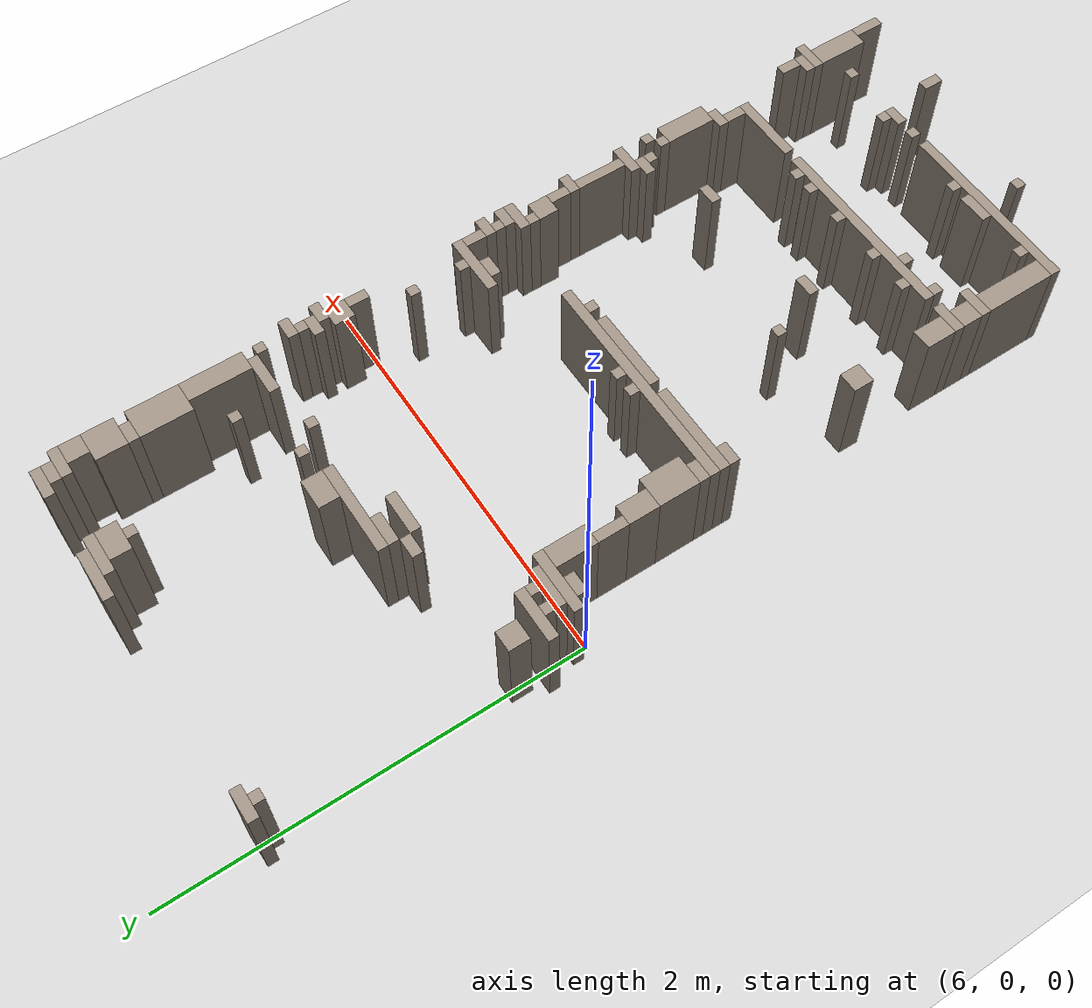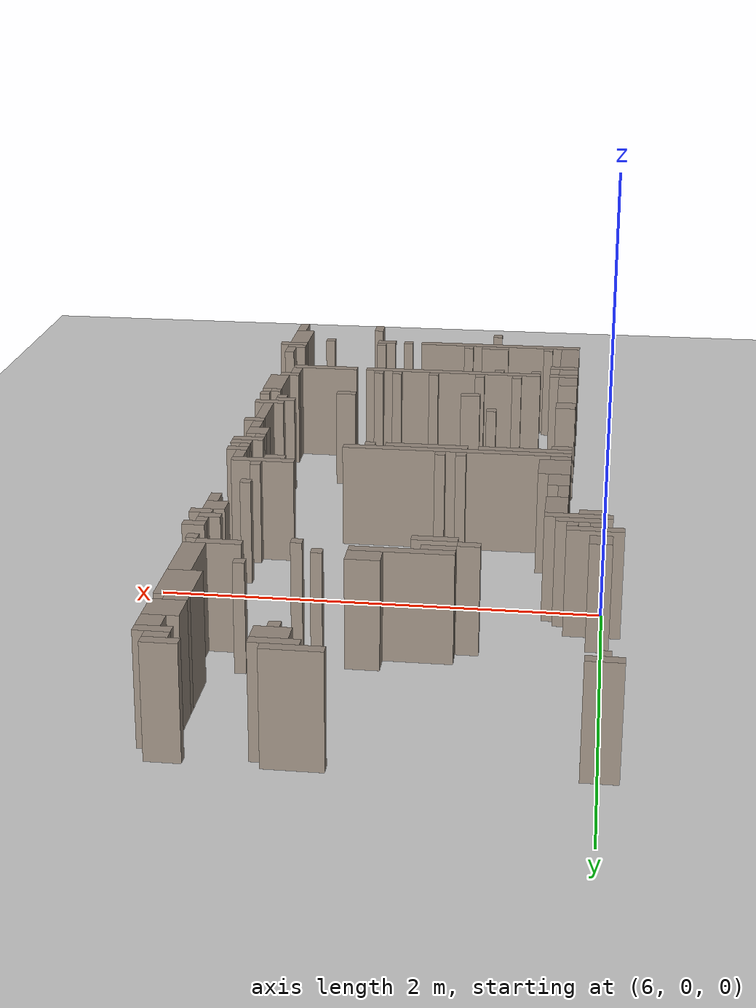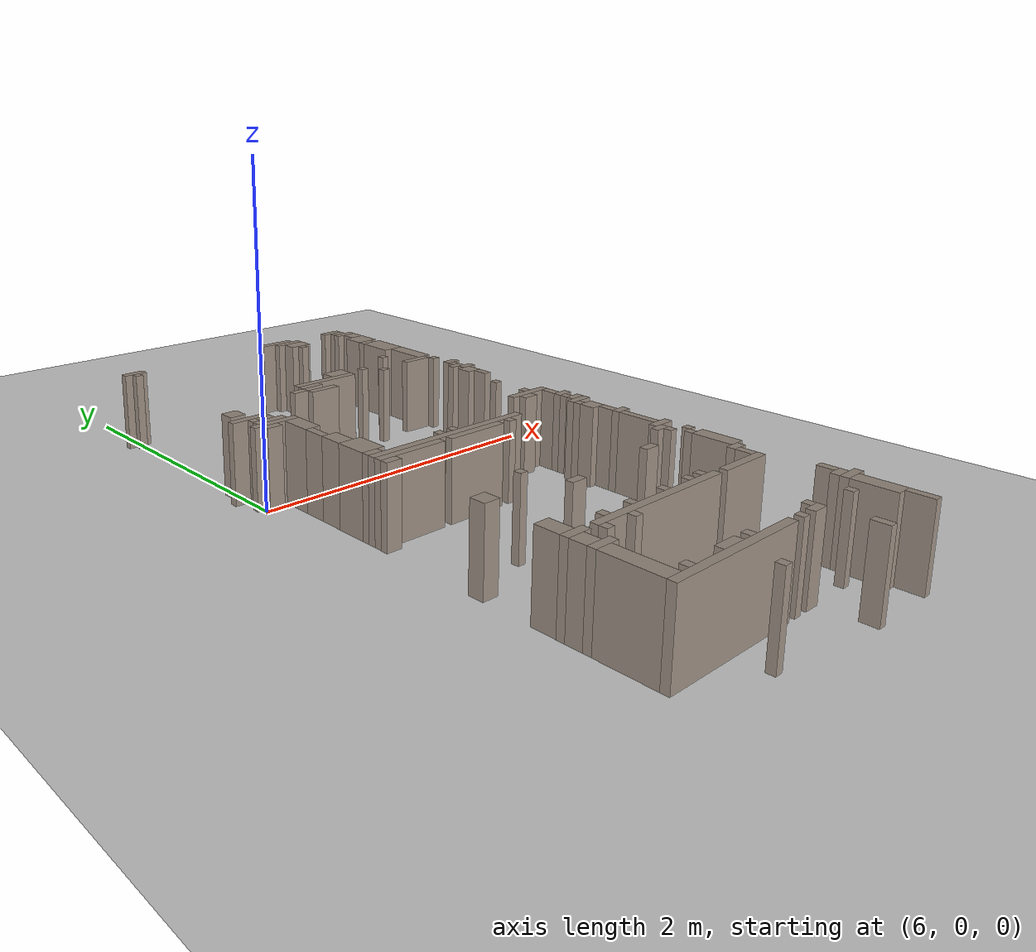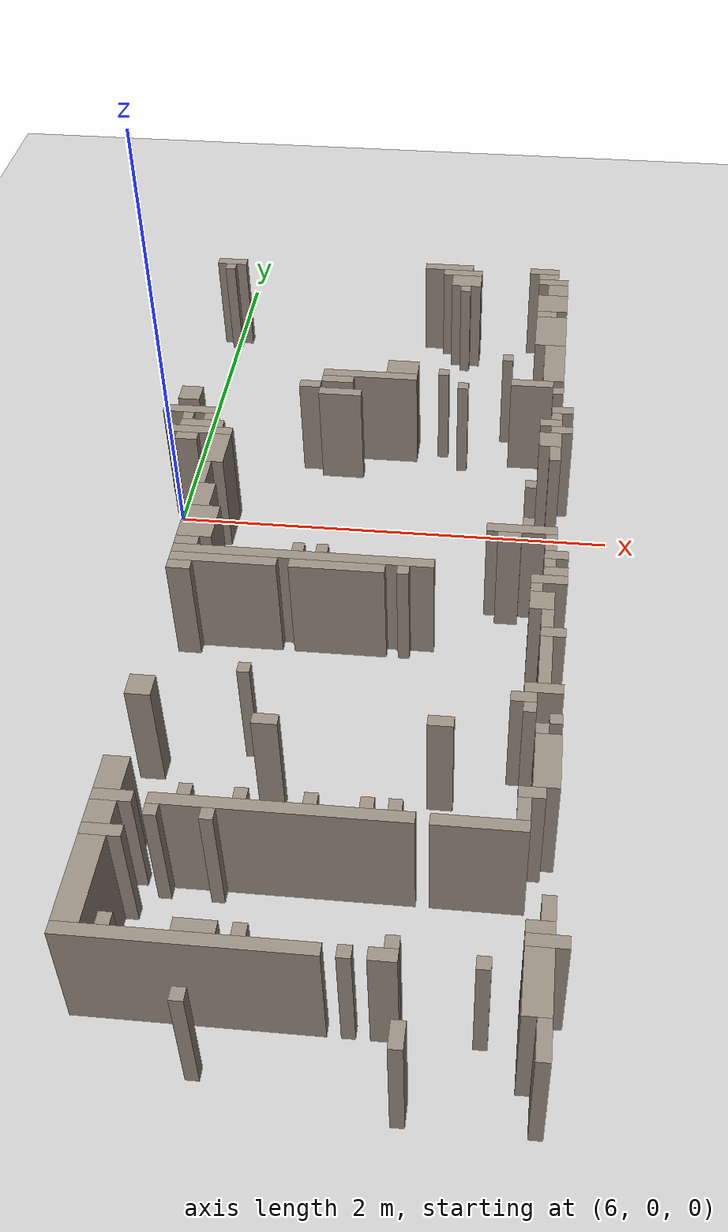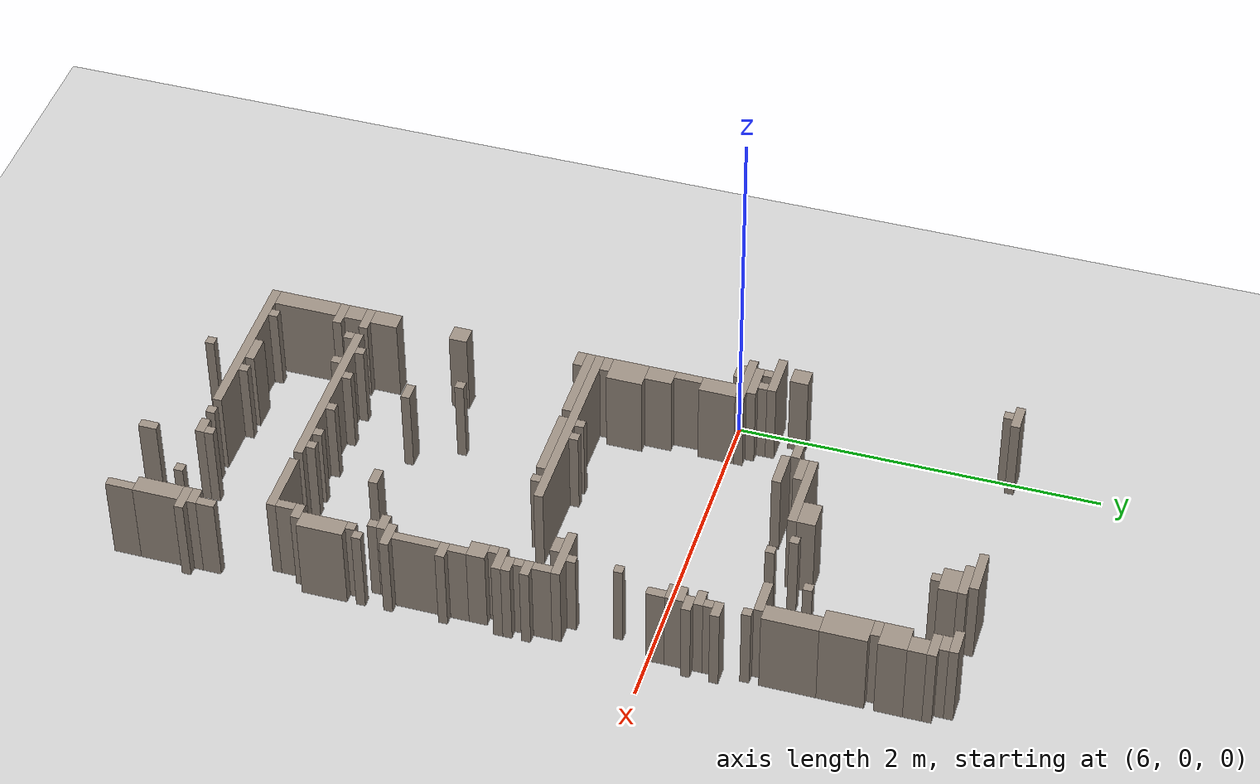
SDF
<sdf version="1.8">
 <world name="bolsao_real">
  <model name="ground_plane">
   <static>true</static>
   <link name="link">
    <collision name="col">
     <geometry><plane><normal>0 0 1</normal><size>100 100</size></plane></geometry>
    </collision>
    <visual name="vis">
     <geometry><plane><normal>0 0 1</normal><size>100 100</size></plane></geometry>
     <material><ambient>0.8 0.8 0.8 1</ambient><diffuse>0.8 0.8 0.8 1</diffuse></material>
    </visual>
   </link>
  </model>
  <model name="wall_0">
   <static>true</static>
   <pose>7.690 1.462 0.250 0 0 0</pose>
   <link name="link">
    <collision name="col"><geometry><box><size>0.150 0.050 0.500</size></box></geometry></collision>
    <visual name="vis">
     <geometry><box><size>0.150 0.050 0.500</size></box></geometry>
     <material><ambient>0.6 0.55 0.5 1</ambient><diffuse>0.6 0.55 0.5 1</diffuse></material>
    </visual>
   </link>
  </model>
  <model name="wall_1">
   <static>true</static>
   <pose>7.665 1.512 0.250 0 0 0</pose>
   <link name="link">
    <collision name="col"><geometry><box><size>0.100 0.050 0.500</size></box></geometry></collision>
    <visual name="vis">
     <geometry><box><size>0.100 0.050 0.500</size></box></geometry>
     <material><ambient>0.6 0.55 0.5 1</ambient><diffuse>0.6 0.55 0.5 1</diffuse></material>
    </visual>
   </link>
  </model>
  <model name="wall_2">
   <static>true</static>
   <pose>7.690 1.262 0.250 0 0 0</pose>
   <link name="link">
    <collision name="col"><geometry><box><size>0.150 0.150 0.500</size></box></geometry></collision>
    <visual name="vis">
     <geometry><box><size>0.150 0.150 0.500</size></box></geometry>
     <material><ambient>0.6 0.55 0.5 1</ambient><diffuse>0.6 0.55 0.5 1</diffuse></material>
    </visual>
   </link>
  </model>
  <model name="wall_3">
   <static>true</static>
   <pose>7.715 1.387 0.250 0 0 0</pose>
   <link name="link">
    <collision name="col"><geometry><box><size>0.100 0.100 0.500</size></box></geometry></collision>
    <visual name="vis">
     <geometry><box><size>0.100 0.100 0.500</size></box></geometry>
     <material><ambient>0.6 0.55 0.5 1</ambient><diffuse>0.6 0.55 0.5 1</diffuse></material>
    </visual>
   </link>
  </model>
  <model name="wall_4">
   <static>true</static>
   <pose>5.990 1.462 0.250 0 0 0</pose>
   <link name="link">
    <collision name="col"><geometry><box><size>0.050 0.050 0.500</size></box></geometry></collision>
    <visual name="vis">
     <geometry><box><size>0.050 0.050 0.500</size></box></geometry>
     <material><ambient>0.6 0.55 0.5 1</ambient><diffuse>0.6 0.55 0.5 1</diffuse></material>
    </visual>
   </link>
  </model>
  <model name="wall_5">
   <static>true</static>
   <pose>7.740 0.512 0.250 0 0 0</pose>
   <link name="link">
    <collision name="col"><geometry><box><size>0.050 0.050 0.500</size></box></geometry></collision>
    <visual name="vis">
     <geometry><box><size>0.050 0.050 0.500</size></box></geometry>
     <material><ambient>0.6 0.55 0.5 1</ambient><diffuse>0.6 0.55 0.5 1</diffuse></material>
    </visual>
   </link>
  </model>
  <model name="wall_6">
   <static>true</static>
   <pose>5.990 1.512 0.250 0 0 0</pose>
   <link name="link">
    <collision name="col"><geometry><box><size>0.150 0.050 0.500</size></box></geometry></collision>
    <visual name="vis">
     <geometry><box><size>0.150 0.050 0.500</size></box></geometry>
     <material><ambient>0.6 0.55 0.5 1</ambient><diffuse>0.6 0.55 0.5 1</diffuse></material>
    </visual>
   </link>
  </model>
  <model name="wall_7">
   <static>true</static>
   <pose>7.715 0.737 0.250 0 0 0</pose>
   <link name="link">
    <collision name="col"><geometry><box><size>0.100 0.300 0.500</size></box></geometry></collision>
    <visual name="vis">
     <geometry><box><size>0.100 0.300 0.500</size></box></geometry>
     <material><ambient>0.6 0.55 0.5 1</ambient><diffuse>0.6 0.55 0.5 1</diffuse></material>
    </visual>
   </link>
  </model>
  <model name="wall_8">
   <static>true</static>
   <pose>7.765 0.362 0.250 0 0 0</pose>
   <link name="link">
    <collision name="col"><geometry><box><size>0.100 0.050 0.500</size></box></geometry></collision>
    <visual name="vis">
     <geometry><box><size>0.100 0.050 0.500</size></box></geometry>
     <material><ambient>0.6 0.55 0.5 1</ambient><diffuse>0.6 0.55 0.5 1</diffuse></material>
    </visual>
   </link>
  </model>
  <model name="wall_9">
   <static>true</static>
   <pose>7.715 0.262 0.250 0 0 0</pose>
   <link name="link">
    <collision name="col"><geometry><box><size>0.100 0.050 0.500</size></box></geometry></collision>
    <visual name="vis">
     <geometry><box><size>0.100 0.050 0.500</size></box></geometry>
     <material><ambient>0.6 0.55 0.5 1</ambient><diffuse>0.6 0.55 0.5 1</diffuse></material>
    </visual>
   </link>
  </model>
  <model name="wall_10">
   <static>true</static>
   <pose>7.740 0.312 0.250 0 0 0</pose>
   <link name="link">
    <collision name="col"><geometry><box><size>0.050 0.050 0.500</size></box></geometry></collision>
    <visual name="vis">
     <geometry><box><size>0.050 0.050 0.500</size></box></geometry>
     <material><ambient>0.6 0.55 0.5 1</ambient><diffuse>0.6 0.55 0.5 1</diffuse></material>
    </visual>
   </link>
  </model>
  <model name="wall_11">
   <static>true</static>
   <pose>6.215 -0.063 0.250 0 0 0</pose>
   <link name="link">
    <collision name="col"><geometry><box><size>0.100 0.200 0.500</size></box></geometry></collision>
    <visual name="vis">
     <geometry><box><size>0.100 0.200 0.500</size></box></geometry>
     <material><ambient>0.6 0.55 0.5 1</ambient><diffuse>0.6 0.55 0.5 1</diffuse></material>
    </visual>
   </link>
  </model>
  <model name="wall_12">
   <static>true</static>
   <pose>7.640 -0.188 0.250 0 0 0</pose>
   <link name="link">
    <collision name="col"><geometry><box><size>0.050 0.050 0.500</size></box></geometry></collision>
    <visual name="vis">
     <geometry><box><size>0.050 0.050 0.500</size></box></geometry>
     <material><ambient>0.6 0.55 0.5 1</ambient><diffuse>0.6 0.55 0.5 1</diffuse></material>
    </visual>
   </link>
  </model>
  <model name="wall_14">
   <static>true</static>
   <pose>7.740 0.037 0.250 0 0 0</pose>
   <link name="link">
    <collision name="col"><geometry><box><size>0.050 0.100 0.500</size></box></geometry></collision>
    <visual name="vis">
     <geometry><box><size>0.050 0.100 0.500</size></box></geometry>
     <material><ambient>0.6 0.55 0.5 1</ambient><diffuse>0.6 0.55 0.5 1</diffuse></material>
    </visual>
   </link>
  </model>
  <model name="wall_16">
   <static>true</static>
   <pose>7.765 0.212 0.250 0 0 0</pose>
   <link name="link">
    <collision name="col"><geometry><box><size>0.100 0.050 0.500</size></box></geometry></collision>
    <visual name="vis">
     <geometry><box><size>0.100 0.050 0.500</size></box></geometry>
     <material><ambient>0.6 0.55 0.5 1</ambient><diffuse>0.6 0.55 0.5 1</diffuse></material>
    </visual>
   </link>
  </model>
  <model name="wall_18">
   <static>true</static>
   <pose>6.215 -0.388 0.250 0 0 0</pose>
   <link name="link">
    <collision name="col"><geometry><box><size>0.100 0.150 0.500</size></box></geometry></collision>
    <visual name="vis">
     <geometry><box><size>0.100 0.150 0.500</size></box></geometry>
     <material><ambient>0.6 0.55 0.5 1</ambient><diffuse>0.6 0.55 0.5 1</diffuse></material>
    </visual>
   </link>
  </model>
  <model name="wall_19">
   <static>true</static>
   <pose>7.740 -0.563 0.250 0 0 0</pose>
   <link name="link">
    <collision name="col"><geometry><box><size>0.050 0.100 0.500</size></box></geometry></collision>
    <visual name="vis">
     <geometry><box><size>0.050 0.100 0.500</size></box></geometry>
     <material><ambient>0.6 0.55 0.5 1</ambient><diffuse>0.6 0.55 0.5 1</diffuse></material>
    </visual>
   </link>
  </model>
  <model name="wall_20">
   <static>true</static>
   <pose>7.765 -0.638 0.250 0 0 0</pose>
   <link name="link">
    <collision name="col"><geometry><box><size>0.100 0.050 0.500</size></box></geometry></collision>
    <visual name="vis">
     <geometry><box><size>0.100 0.050 0.500</size></box></geometry>
     <material><ambient>0.6 0.55 0.5 1</ambient><diffuse>0.6 0.55 0.5 1</diffuse></material>
    </visual>
   </link>
  </model>
  <model name="wall_22">
   <static>true</static>
   <pose>6.215 -0.688 0.250 0 0 0</pose>
   <link name="link">
    <collision name="col"><geometry><box><size>0.100 0.050 0.500</size></box></geometry></collision>
    <visual name="vis">
     <geometry><box><size>0.100 0.050 0.500</size></box></geometry>
     <material><ambient>0.6 0.55 0.5 1</ambient><diffuse>0.6 0.55 0.5 1</diffuse></material>
    </visual>
   </link>
  </model>
  <model name="wall_24">
   <static>true</static>
   <pose>7.715 0.137 0.250 0 0 0</pose>
   <link name="link">
    <collision name="col"><geometry><box><size>0.100 0.100 0.500</size></box></geometry></collision>
    <visual name="vis">
     <geometry><box><size>0.100 0.100 0.500</size></box></geometry>
     <material><ambient>0.6 0.55 0.5 1</ambient><diffuse>0.6 0.55 0.5 1</diffuse></material>
    </visual>
   </link>
  </model>
  <model name="wall_27">
   <static>true</static>
   <pose>7.740 -0.688 0.250 0 0 0</pose>
   <link name="link">
    <collision name="col"><geometry><box><size>0.050 0.050 0.500</size></box></geometry></collision>
    <visual name="vis">
     <geometry><box><size>0.050 0.050 0.500</size></box></geometry>
     <material><ambient>0.6 0.55 0.5 1</ambient><diffuse>0.6 0.55 0.5 1</diffuse></material>
    </visual>
   </link>
  </model>
  <model name="wall_29">
   <static>true</static>
   <pose>7.765 -0.738 0.250 0 0 0</pose>
   <link name="link">
    <collision name="col"><geometry><box><size>0.100 0.050 0.500</size></box></geometry></collision>
    <visual name="vis">
     <geometry><box><size>0.100 0.050 0.500</size></box></geometry>
     <material><ambient>0.6 0.55 0.5 1</ambient><diffuse>0.6 0.55 0.5 1</diffuse></material>
    </visual>
   </link>
  </model>
  <model name="wall_31">
   <static>true</static>
   <pose>7.740 -1.013 0.250 0 0 0</pose>
   <link name="link">
    <collision name="col"><geometry><box><size>0.050 0.100 0.500</size></box></geometry></collision>
    <visual name="vis">
     <geometry><box><size>0.050 0.100 0.500</size></box></geometry>
     <material><ambient>0.6 0.55 0.5 1</ambient><diffuse>0.6 0.55 0.5 1</diffuse></material>
    </visual>
   </link>
  </model>
  <model name="wall_32">
   <static>true</static>
   <pose>7.740 -0.788 0.250 0 0 0</pose>
   <link name="link">
    <collision name="col"><geometry><box><size>0.150 0.050 0.500</size></box></geometry></collision>
    <visual name="vis">
     <geometry><box><size>0.150 0.050 0.500</size></box></geometry>
     <material><ambient>0.6 0.55 0.5 1</ambient><diffuse>0.6 0.55 0.5 1</diffuse></material>
    </visual>
   </link>
  </model>
  <model name="wall_35">
   <static>true</static>
   <pose>7.665 1.162 0.250 0 0 0</pose>
   <link name="link">
    <collision name="col"><geometry><box><size>0.100 0.050 0.500</size></box></geometry></collision>
    <visual name="vis">
     <geometry><box><size>0.100 0.050 0.500</size></box></geometry>
     <material><ambient>0.6 0.55 0.5 1</ambient><diffuse>0.6 0.55 0.5 1</diffuse></material>
    </visual>
   </link>
  </model>
  <model name="wall_39">
   <static>true</static>
   <pose>6.215 -0.838 0.250 0 0 0</pose>
   <link name="link">
    <collision name="col"><geometry><box><size>0.100 0.050 0.500</size></box></geometry></collision>
    <visual name="vis">
     <geometry><box><size>0.100 0.050 0.500</size></box></geometry>
     <material><ambient>0.6 0.55 0.5 1</ambient><diffuse>0.6 0.55 0.5 1</diffuse></material>
    </visual>
   </link>
  </model>
  <model name="wall_40">
   <static>true</static>
   <pose>7.690 -0.838 0.250 0 0 0</pose>
   <link name="link">
    <collision name="col"><geometry><box><size>0.050 0.050 0.500</size></box></geometry></collision>
    <visual name="vis">
     <geometry><box><size>0.050 0.050 0.500</size></box></geometry>
     <material><ambient>0.6 0.55 0.5 1</ambient><diffuse>0.6 0.55 0.5 1</diffuse></material>
    </visual>
   </link>
  </model>
  <model name="wall_42">
   <static>true</static>
   <pose>7.740 -1.238 0.250 0 0 0</pose>
   <link name="link">
    <collision name="col"><geometry><box><size>0.050 0.250 0.500</size></box></geometry></collision>
    <visual name="vis">
     <geometry><box><size>0.050 0.250 0.500</size></box></geometry>
     <material><ambient>0.6 0.55 0.5 1</ambient><diffuse>0.6 0.55 0.5 1</diffuse></material>
    </visual>
   </link>
  </model>
  <model name="wall_44">
   <static>true</static>
   <pose>7.765 -1.088 0.250 0 0 0</pose>
   <link name="link">
    <collision name="col"><geometry><box><size>0.100 0.050 0.500</size></box></geometry></collision>
    <visual name="vis">
     <geometry><box><size>0.100 0.050 0.500</size></box></geometry>
     <material><ambient>0.6 0.55 0.5 1</ambient><diffuse>0.6 0.55 0.5 1</diffuse></material>
    </visual>
   </link>
  </model>
  <model name="wall_53">
   <static>true</static>
   <pose>6.215 -1.513 0.250 0 0 0</pose>
   <link name="link">
    <collision name="col"><geometry><box><size>0.100 0.100 0.500</size></box></geometry></collision>
    <visual name="vis">
     <geometry><box><size>0.100 0.100 0.500</size></box></geometry>
     <material><ambient>0.6 0.55 0.5 1</ambient><diffuse>0.6 0.55 0.5 1</diffuse></material>
    </visual>
   </link>
  </model>
  <model name="wall_54">
   <static>true</static>
   <pose>7.715 -0.913 0.250 0 0 0</pose>
   <link name="link">
    <collision name="col"><geometry><box><size>0.100 0.100 0.500</size></box></geometry></collision>
    <visual name="vis">
     <geometry><box><size>0.100 0.100 0.500</size></box></geometry>
     <material><ambient>0.6 0.55 0.5 1</ambient><diffuse>0.6 0.55 0.5 1</diffuse></material>
    </visual>
   </link>
  </model>
  <model name="wall_56">
   <static>true</static>
   <pose>7.690 -1.488 0.250 0 0 0</pose>
   <link name="link">
    <collision name="col"><geometry><box><size>0.050 0.050 0.500</size></box></geometry></collision>
    <visual name="vis">
     <geometry><box><size>0.050 0.050 0.500</size></box></geometry>
     <material><ambient>0.6 0.55 0.5 1</ambient><diffuse>0.6 0.55 0.5 1</diffuse></material>
    </visual>
   </link>
  </model>
  <model name="wall_59">
   <static>true</static>
   <pose>6.690 -0.688 0.250 0 0 0</pose>
   <link name="link">
    <collision name="col"><geometry><box><size>0.050 0.050 0.500</size></box></geometry></collision>
    <visual name="vis">
     <geometry><box><size>0.050 0.050 0.500</size></box></geometry>
     <material><ambient>0.6 0.55 0.5 1</ambient><diffuse>0.6 0.55 0.5 1</diffuse></material>
    </visual>
   </link>
  </model>
  <model name="wall_60">
   <static>true</static>
   <pose>7.140 -0.788 0.250 0 0 0</pose>
   <link name="link">
    <collision name="col"><geometry><box><size>0.050 0.050 0.500</size></box></geometry></collision>
    <visual name="vis">
     <geometry><box><size>0.050 0.050 0.500</size></box></geometry>
     <material><ambient>0.6 0.55 0.5 1</ambient><diffuse>0.6 0.55 0.5 1</diffuse></material>
    </visual>
   </link>
  </model>
  <model name="wall_61">
   <static>true</static>
   <pose>7.240 1.362 0.250 0 0 0</pose>
   <link name="link">
    <collision name="col"><geometry><box><size>0.050 0.050 0.500</size></box></geometry></collision>
    <visual name="vis">
     <geometry><box><size>0.050 0.050 0.500</size></box></geometry>
     <material><ambient>0.6 0.55 0.5 1</ambient><diffuse>0.6 0.55 0.5 1</diffuse></material>
    </visual>
   </link>
  </model>
  <model name="wall_62">
   <static>true</static>
   <pose>6.240 -0.563 0.250 0 0 0</pose>
   <link name="link">
    <collision name="col"><geometry><box><size>0.150 0.200 0.500</size></box></geometry></collision>
    <visual name="vis">
     <geometry><box><size>0.150 0.200 0.500</size></box></geometry>
     <material><ambient>0.6 0.55 0.5 1</ambient><diffuse>0.6 0.55 0.5 1</diffuse></material>
    </visual>
   </link>
  </model>
  <model name="wall_63">
   <static>true</static>
   <pose>6.215 -1.938 0.250 0 0 0</pose>
   <link name="link">
    <collision name="col"><geometry><box><size>0.100 0.150 0.500</size></box></geometry></collision>
    <visual name="vis">
     <geometry><box><size>0.100 0.150 0.500</size></box></geometry>
     <material><ambient>0.6 0.55 0.5 1</ambient><diffuse>0.6 0.55 0.5 1</diffuse></material>
    </visual>
   </link>
  </model>
  <model name="wall_64">
   <static>true</static>
   <pose>6.590 -1.388 0.250 0 0 0</pose>
   <link name="link">
    <collision name="col"><geometry><box><size>0.050 0.050 0.500</size></box></geometry></collision>
    <visual name="vis">
     <geometry><box><size>0.050 0.050 0.500</size></box></geometry>
     <material><ambient>0.6 0.55 0.5 1</ambient><diffuse>0.6 0.55 0.5 1</diffuse></material>
    </visual>
   </link>
  </model>
  <model name="wall_66">
   <static>true</static>
   <pose>6.240 -2.038 0.250 0 0 0</pose>
   <link name="link">
    <collision name="col"><geometry><box><size>0.150 0.050 0.500</size></box></geometry></collision>
    <visual name="vis">
     <geometry><box><size>0.150 0.050 0.500</size></box></geometry>
     <material><ambient>0.6 0.55 0.5 1</ambient><diffuse>0.6 0.55 0.5 1</diffuse></material>
    </visual>
   </link>
  </model>
  <model name="wall_67">
   <static>true</static>
   <pose>6.215 -2.113 0.250 0 0 0</pose>
   <link name="link">
    <collision name="col"><geometry><box><size>0.100 0.100 0.500</size></box></geometry></collision>
    <visual name="vis">
     <geometry><box><size>0.100 0.100 0.500</size></box></geometry>
     <material><ambient>0.6 0.55 0.5 1</ambient><diffuse>0.6 0.55 0.5 1</diffuse></material>
    </visual>
   </link>
  </model>
  <model name="wall_68">
   <static>true</static>
   <pose>7.790 -1.538 0.250 0 0 0</pose>
   <link name="link">
    <collision name="col"><geometry><box><size>0.050 0.050 0.500</size></box></geometry></collision>
    <visual name="vis">
     <geometry><box><size>0.050 0.050 0.500</size></box></geometry>
     <material><ambient>0.6 0.55 0.5 1</ambient><diffuse>0.6 0.55 0.5 1</diffuse></material>
    </visual>
   </link>
  </model>
  <model name="wall_71">
   <static>true</static>
   <pose>7.765 -1.738 0.250 0 0 0</pose>
   <link name="link">
    <collision name="col"><geometry><box><size>0.100 0.250 0.500</size></box></geometry></collision>
    <visual name="vis">
     <geometry><box><size>0.100 0.250 0.500</size></box></geometry>
     <material><ambient>0.6 0.55 0.5 1</ambient><diffuse>0.6 0.55 0.5 1</diffuse></material>
    </visual>
   </link>
  </model>
  <model name="wall_73">
   <static>true</static>
   <pose>6.790 -0.688 0.250 0 0 0</pose>
   <link name="link">
    <collision name="col"><geometry><box><size>0.050 0.050 0.500</size></box></geometry></collision>
    <visual name="vis">
     <geometry><box><size>0.050 0.050 0.500</size></box></geometry>
     <material><ambient>0.6 0.55 0.5 1</ambient><diffuse>0.6 0.55 0.5 1</diffuse></material>
    </visual>
   </link>
  </model>
  <model name="wall_74">
   <static>true</static>
   <pose>7.290 0.512 0.250 0 0 0</pose>
   <link name="link">
    <collision name="col"><geometry><box><size>0.050 0.050 0.500</size></box></geometry></collision>
    <visual name="vis">
     <geometry><box><size>0.050 0.050 0.500</size></box></geometry>
     <material><ambient>0.6 0.55 0.5 1</ambient><diffuse>0.6 0.55 0.5 1</diffuse></material>
    </visual>
   </link>
  </model>
  <model name="wall_75">
   <static>true</static>
   <pose>7.765 -2.438 0.250 0 0 0</pose>
   <link name="link">
    <collision name="col"><geometry><box><size>0.100 0.050 0.500</size></box></geometry></collision>
    <visual name="vis">
     <geometry><box><size>0.100 0.050 0.500</size></box></geometry>
     <material><ambient>0.6 0.55 0.5 1</ambient><diffuse>0.6 0.55 0.5 1</diffuse></material>
    </visual>
   </link>
  </model>
  <model name="wall_76">
   <static>true</static>
   <pose>7.140 -1.988 0.250 0 0 0</pose>
   <link name="link">
    <collision name="col"><geometry><box><size>0.050 0.050 0.500</size></box></geometry></collision>
    <visual name="vis">
     <geometry><box><size>0.050 0.050 0.500</size></box></geometry>
     <material><ambient>0.6 0.55 0.5 1</ambient><diffuse>0.6 0.55 0.5 1</diffuse></material>
    </visual>
   </link>
  </model>
  <model name="wall_79">
   <static>true</static>
   <pose>7.790 -2.363 0.250 0 0 0</pose>
   <link name="link">
    <collision name="col"><geometry><box><size>0.050 0.100 0.500</size></box></geometry></collision>
    <visual name="vis">
     <geometry><box><size>0.050 0.100 0.500</size></box></geometry>
     <material><ambient>0.6 0.55 0.5 1</ambient><diffuse>0.6 0.55 0.5 1</diffuse></material>
    </visual>
   </link>
  </model>
  <model name="wall_80">
   <static>true</static>
   <pose>7.765 -2.638 0.250 0 0 0</pose>
   <link name="link">
    <collision name="col"><geometry><box><size>0.100 0.250 0.500</size></box></geometry></collision>
    <visual name="vis">
     <geometry><box><size>0.100 0.250 0.500</size></box></geometry>
     <material><ambient>0.6 0.55 0.5 1</ambient><diffuse>0.6 0.55 0.5 1</diffuse></material>
    </visual>
   </link>
  </model>
  <model name="wall_81">
   <static>true</static>
   <pose>6.940 -1.988 0.250 0 0 0</pose>
   <link name="link">
    <collision name="col"><geometry><box><size>0.050 0.050 0.500</size></box></geometry></collision>
    <visual name="vis">
     <geometry><box><size>0.050 0.050 0.500</size></box></geometry>
     <material><ambient>0.6 0.55 0.5 1</ambient><diffuse>0.6 0.55 0.5 1</diffuse></material>
    </visual>
   </link>
  </model>
  <model name="wall_82">
   <static>true</static>
   <pose>7.790 -2.838 0.250 0 0 0</pose>
   <link name="link">
    <collision name="col"><geometry><box><size>0.050 0.150 0.500</size></box></geometry></collision>
    <visual name="vis">
     <geometry><box><size>0.050 0.150 0.500</size></box></geometry>
     <material><ambient>0.6 0.55 0.5 1</ambient><diffuse>0.6 0.55 0.5 1</diffuse></material>
    </visual>
   </link>
  </model>
  <model name="wall_85">
   <static>true</static>
   <pose>7.790 -2.488 0.250 0 0 0</pose>
   <link name="link">
    <collision name="col"><geometry><box><size>0.150 0.050 0.500</size></box></geometry></collision>
    <visual name="vis">
     <geometry><box><size>0.150 0.050 0.500</size></box></geometry>
     <material><ambient>0.6 0.55 0.5 1</ambient><diffuse>0.6 0.55 0.5 1</diffuse></material>
    </visual>
   </link>
  </model>
  <model name="wall_86">
   <static>true</static>
   <pose>7.715 -1.888 0.250 0 0 0</pose>
   <link name="link">
    <collision name="col"><geometry><box><size>0.100 0.050 0.500</size></box></geometry></collision>
    <visual name="vis">
     <geometry><box><size>0.100 0.050 0.500</size></box></geometry>
     <material><ambient>0.6 0.55 0.5 1</ambient><diffuse>0.6 0.55 0.5 1</diffuse></material>
    </visual>
   </link>
  </model>
  <model name="wall_87">
   <static>true</static>
   <pose>7.740 -1.388 0.250 0 0 0</pose>
   <link name="link">
    <collision name="col"><geometry><box><size>0.150 0.050 0.500</size></box></geometry></collision>
    <visual name="vis">
     <geometry><box><size>0.150 0.050 0.500</size></box></geometry>
     <material><ambient>0.6 0.55 0.5 1</ambient><diffuse>0.6 0.55 0.5 1</diffuse></material>
    </visual>
   </link>
  </model>
  <model name="wall_99">
   <static>true</static>
   <pose>7.215 1.512 0.250 0 0 0</pose>
   <link name="link">
    <collision name="col"><geometry><box><size>0.200 0.050 0.500</size></box></geometry></collision>
    <visual name="vis">
     <geometry><box><size>0.200 0.050 0.500</size></box></geometry>
     <material><ambient>0.6 0.55 0.5 1</ambient><diffuse>0.6 0.55 0.5 1</diffuse></material>
    </visual>
   </link>
  </model>
  <model name="wall_102">
   <static>true</static>
   <pose>7.290 -2.538 0.250 0 0 0</pose>
   <link name="link">
    <collision name="col"><geometry><box><size>0.050 0.050 0.500</size></box></geometry></collision>
    <visual name="vis">
     <geometry><box><size>0.050 0.050 0.500</size></box></geometry>
     <material><ambient>0.6 0.55 0.5 1</ambient><diffuse>0.6 0.55 0.5 1</diffuse></material>
    </visual>
   </link>
  </model>
  <model name="wall_103">
   <static>true</static>
   <pose>7.690 1.012 0.250 0 0 0</pose>
   <link name="link">
    <collision name="col"><geometry><box><size>0.150 0.250 0.500</size></box></geometry></collision>
    <visual name="vis">
     <geometry><box><size>0.150 0.250 0.500</size></box></geometry>
     <material><ambient>0.6 0.55 0.5 1</ambient><diffuse>0.6 0.55 0.5 1</diffuse></material>
    </visual>
   </link>
  </model>
  <model name="wall_105">
   <static>true</static>
   <pose>6.140 0.162 0.250 0 0 0</pose>
   <link name="link">
    <collision name="col"><geometry><box><size>0.050 0.050 0.500</size></box></geometry></collision>
    <visual name="vis">
     <geometry><box><size>0.050 0.050 0.500</size></box></geometry>
     <material><ambient>0.6 0.55 0.5 1</ambient><diffuse>0.6 0.55 0.5 1</diffuse></material>
    </visual>
   </link>
  </model>
  <model name="wall_106">
   <static>true</static>
   <pose>7.190 0.612 0.250 0 0 0</pose>
   <link name="link">
    <collision name="col"><geometry><box><size>0.050 0.050 0.500</size></box></geometry></collision>
    <visual name="vis">
     <geometry><box><size>0.050 0.050 0.500</size></box></geometry>
     <material><ambient>0.6 0.55 0.5 1</ambient><diffuse>0.6 0.55 0.5 1</diffuse></material>
    </visual>
   </link>
  </model>
  <model name="wall_107">
   <static>true</static>
   <pose>7.740 -1.588 0.250 0 0 0</pose>
   <link name="link">
    <collision name="col"><geometry><box><size>0.050 0.050 0.500</size></box></geometry></collision>
    <visual name="vis">
     <geometry><box><size>0.050 0.050 0.500</size></box></geometry>
     <material><ambient>0.6 0.55 0.5 1</ambient><diffuse>0.6 0.55 0.5 1</diffuse></material>
    </visual>
   </link>
  </model>
  <model name="wall_120">
   <static>true</static>
   <pose>6.015 0.337 0.250 0 0 0</pose>
   <link name="link">
    <collision name="col"><geometry><box><size>0.100 0.100 0.500</size></box></geometry></collision>
    <visual name="vis">
     <geometry><box><size>0.100 0.100 0.500</size></box></geometry>
     <material><ambient>0.6 0.55 0.5 1</ambient><diffuse>0.6 0.55 0.5 1</diffuse></material>
    </visual>
   </link>
  </model>
  <model name="wall_124">
   <static>true</static>
   <pose>6.215 -2.388 0.250 0 0 0</pose>
   <link name="link">
    <collision name="col"><geometry><box><size>0.100 0.350 0.500</size></box></geometry></collision>
    <visual name="vis">
     <geometry><box><size>0.100 0.350 0.500</size></box></geometry>
     <material><ambient>0.6 0.55 0.5 1</ambient><diffuse>0.6 0.55 0.5 1</diffuse></material>
    </visual>
   </link>
  </model>
  <model name="wall_125">
   <static>true</static>
   <pose>7.665 -1.438 0.250 0 0 0</pose>
   <link name="link">
    <collision name="col"><geometry><box><size>0.100 0.050 0.500</size></box></geometry></collision>
    <visual name="vis">
     <geometry><box><size>0.100 0.050 0.500</size></box></geometry>
     <material><ambient>0.6 0.55 0.5 1</ambient><diffuse>0.6 0.55 0.5 1</diffuse></material>
    </visual>
   </link>
  </model>
  <model name="wall_128">
   <static>true</static>
   <pose>7.640 -0.438 0.250 0 0 0</pose>
   <link name="link">
    <collision name="col"><geometry><box><size>0.050 0.050 0.500</size></box></geometry></collision>
    <visual name="vis">
     <geometry><box><size>0.050 0.050 0.500</size></box></geometry>
     <material><ambient>0.6 0.55 0.5 1</ambient><diffuse>0.6 0.55 0.5 1</diffuse></material>
    </visual>
   </link>
  </model>
  <model name="wall_130">
   <static>true</static>
   <pose>6.190 -0.238 0.250 0 0 0</pose>
   <link name="link">
    <collision name="col"><geometry><box><size>0.050 0.150 0.500</size></box></geometry></collision>
    <visual name="vis">
     <geometry><box><size>0.050 0.150 0.500</size></box></geometry>
     <material><ambient>0.6 0.55 0.5 1</ambient><diffuse>0.6 0.55 0.5 1</diffuse></material>
    </visual>
   </link>
  </model>
  <model name="wall_135">
   <static>true</static>
   <pose>6.640 -2.788 0.250 0 0 0</pose>
   <link name="link">
    <collision name="col"><geometry><box><size>0.050 0.050 0.500</size></box></geometry></collision>
    <visual name="vis">
     <geometry><box><size>0.050 0.050 0.500</size></box></geometry>
     <material><ambient>0.6 0.55 0.5 1</ambient><diffuse>0.6 0.55 0.5 1</diffuse></material>
    </visual>
   </link>
  </model>
  <model name="wall_136">
   <static>true</static>
   <pose>7.240 -1.988 0.250 0 0 0</pose>
   <link name="link">
    <collision name="col"><geometry><box><size>0.050 0.050 0.500</size></box></geometry></collision>
    <visual name="vis">
     <geometry><box><size>0.050 0.050 0.500</size></box></geometry>
     <material><ambient>0.6 0.55 0.5 1</ambient><diffuse>0.6 0.55 0.5 1</diffuse></material>
    </visual>
   </link>
  </model>
  <model name="wall_145">
   <static>true</static>
   <pose>7.140 1.562 0.250 0 0 0</pose>
   <link name="link">
    <collision name="col"><geometry><box><size>0.250 0.050 0.500</size></box></geometry></collision>
    <visual name="vis">
     <geometry><box><size>0.250 0.050 0.500</size></box></geometry>
     <material><ambient>0.6 0.55 0.5 1</ambient><diffuse>0.6 0.55 0.5 1</diffuse></material>
    </visual>
   </link>
  </model>
  <model name="wall_146">
   <static>true</static>
   <pose>7.640 1.562 0.250 0 0 0</pose>
   <link name="link">
    <collision name="col"><geometry><box><size>0.150 0.050 0.500</size></box></geometry></collision>
    <visual name="vis">
     <geometry><box><size>0.150 0.050 0.500</size></box></geometry>
     <material><ambient>0.6 0.55 0.5 1</ambient><diffuse>0.6 0.55 0.5 1</diffuse></material>
    </visual>
   </link>
  </model>
  <model name="wall_151">
   <static>true</static>
   <pose>7.240 1.437 0.250 0 0 0</pose>
   <link name="link">
    <collision name="col"><geometry><box><size>0.150 0.100 0.500</size></box></geometry></collision>
    <visual name="vis">
     <geometry><box><size>0.150 0.100 0.500</size></box></geometry>
     <material><ambient>0.6 0.55 0.5 1</ambient><diffuse>0.6 0.55 0.5 1</diffuse></material>
    </visual>
   </link>
  </model>
  <model name="wall_155">
   <static>true</static>
   <pose>7.490 0.762 0.250 0 0 0</pose>
   <link name="link">
    <collision name="col"><geometry><box><size>0.050 0.050 0.500</size></box></geometry></collision>
    <visual name="vis">
     <geometry><box><size>0.050 0.050 0.500</size></box></geometry>
     <material><ambient>0.6 0.55 0.5 1</ambient><diffuse>0.6 0.55 0.5 1</diffuse></material>
    </visual>
   </link>
  </model>
  <model name="wall_156">
   <static>true</static>
   <pose>6.990 0.637 0.250 0 0 0</pose>
   <link name="link">
    <collision name="col"><geometry><box><size>0.150 0.100 0.500</size></box></geometry></collision>
    <visual name="vis">
     <geometry><box><size>0.150 0.100 0.500</size></box></geometry>
     <material><ambient>0.6 0.55 0.5 1</ambient><diffuse>0.6 0.55 0.5 1</diffuse></material>
    </visual>
   </link>
  </model>
  <model name="wall_159">
   <static>true</static>
   <pose>6.840 0.562 0.250 0 0 0</pose>
   <link name="link">
    <collision name="col"><geometry><box><size>0.450 0.050 0.500</size></box></geometry></collision>
    <visual name="vis">
     <geometry><box><size>0.450 0.050 0.500</size></box></geometry>
     <material><ambient>0.6 0.55 0.5 1</ambient><diffuse>0.6 0.55 0.5 1</diffuse></material>
    </visual>
   </link>
  </model>
  <model name="wall_160">
   <static>true</static>
   <pose>7.615 0.562 0.250 0 0 0</pose>
   <link name="link">
    <collision name="col"><geometry><box><size>0.200 0.050 0.500</size></box></geometry></collision>
    <visual name="vis">
     <geometry><box><size>0.200 0.050 0.500</size></box></geometry>
     <material><ambient>0.6 0.55 0.5 1</ambient><diffuse>0.6 0.55 0.5 1</diffuse></material>
    </visual>
   </link>
  </model>
  <model name="wall_163">
   <static>true</static>
   <pose>6.690 0.512 0.250 0 0 0</pose>
   <link name="link">
    <collision name="col"><geometry><box><size>0.150 0.050 0.500</size></box></geometry></collision>
    <visual name="vis">
     <geometry><box><size>0.150 0.050 0.500</size></box></geometry>
     <material><ambient>0.6 0.55 0.5 1</ambient><diffuse>0.6 0.55 0.5 1</diffuse></material>
    </visual>
   </link>
  </model>
  <model name="wall_169">
   <static>true</static>
   <pose>6.565 0.462 0.250 0 0 0</pose>
   <link name="link">
    <collision name="col"><geometry><box><size>0.100 0.050 0.500</size></box></geometry></collision>
    <visual name="vis">
     <geometry><box><size>0.100 0.050 0.500</size></box></geometry>
     <material><ambient>0.6 0.55 0.5 1</ambient><diffuse>0.6 0.55 0.5 1</diffuse></material>
    </visual>
   </link>
  </model>
  <model name="wall_172">
   <static>true</static>
   <pose>6.715 0.412 0.250 0 0 0</pose>
   <link name="link">
    <collision name="col"><geometry><box><size>0.200 0.050 0.500</size></box></geometry></collision>
    <visual name="vis">
     <geometry><box><size>0.200 0.050 0.500</size></box></geometry>
     <material><ambient>0.6 0.55 0.5 1</ambient><diffuse>0.6 0.55 0.5 1</diffuse></material>
    </visual>
   </link>
  </model>
  <model name="wall_179">
   <static>true</static>
   <pose>6.040 0.212 0.250 0 0 0</pose>
   <link name="link">
    <collision name="col"><geometry><box><size>0.250 0.050 0.500</size></box></geometry></collision>
    <visual name="vis">
     <geometry><box><size>0.250 0.050 0.500</size></box></geometry>
     <material><ambient>0.6 0.55 0.5 1</ambient><diffuse>0.6 0.55 0.5 1</diffuse></material>
    </visual>
   </link>
  </model>
  <model name="wall_180">
   <static>true</static>
   <pose>6.040 0.162 0.250 0 0 0</pose>
   <link name="link">
    <collision name="col"><geometry><box><size>0.050 0.050 0.500</size></box></geometry></collision>
    <visual name="vis">
     <geometry><box><size>0.050 0.050 0.500</size></box></geometry>
     <material><ambient>0.6 0.55 0.5 1</ambient><diffuse>0.6 0.55 0.5 1</diffuse></material>
    </visual>
   </link>
  </model>
  <model name="wall_182">
   <static>true</static>
   <pose>6.115 0.112 0.250 0 0 0</pose>
   <link name="link">
    <collision name="col"><geometry><box><size>0.200 0.050 0.500</size></box></geometry></collision>
    <visual name="vis">
     <geometry><box><size>0.200 0.050 0.500</size></box></geometry>
     <material><ambient>0.6 0.55 0.5 1</ambient><diffuse>0.6 0.55 0.5 1</diffuse></material>
    </visual>
   </link>
  </model>
  <model name="wall_184">
   <static>true</static>
   <pose>6.115 0.062 0.250 0 0 0</pose>
   <link name="link">
    <collision name="col"><geometry><box><size>0.300 0.050 0.500</size></box></geometry></collision>
    <visual name="vis">
     <geometry><box><size>0.300 0.050 0.500</size></box></geometry>
     <material><ambient>0.6 0.55 0.5 1</ambient><diffuse>0.6 0.55 0.5 1</diffuse></material>
    </visual>
   </link>
  </model>
  <model name="wall_185">
   <static>true</static>
   <pose>6.065 0.012 0.250 0 0 0</pose>
   <link name="link">
    <collision name="col"><geometry><box><size>0.100 0.050 0.500</size></box></geometry></collision>
    <visual name="vis">
     <geometry><box><size>0.100 0.050 0.500</size></box></geometry>
     <material><ambient>0.6 0.55 0.5 1</ambient><diffuse>0.6 0.55 0.5 1</diffuse></material>
    </visual>
   </link>
  </model>
  <model name="wall_190">
   <static>true</static>
   <pose>6.240 -2.188 0.250 0 0 0</pose>
   <link name="link">
    <collision name="col"><geometry><box><size>0.150 0.050 0.500</size></box></geometry></collision>
    <visual name="vis">
     <geometry><box><size>0.150 0.050 0.500</size></box></geometry>
     <material><ambient>0.6 0.55 0.5 1</ambient><diffuse>0.6 0.55 0.5 1</diffuse></material>
    </visual>
   </link>
  </model>
  <model name="wall_191">
   <static>true</static>
   <pose>7.615 -0.488 0.250 0 0 0</pose>
   <link name="link">
    <collision name="col"><geometry><box><size>0.300 0.050 0.500</size></box></geometry></collision>
    <visual name="vis">
     <geometry><box><size>0.300 0.050 0.500</size></box></geometry>
     <material><ambient>0.6 0.55 0.5 1</ambient><diffuse>0.6 0.55 0.5 1</diffuse></material>
    </visual>
   </link>
  </model>
  <model name="wall_193">
   <static>true</static>
   <pose>7.565 -0.538 0.250 0 0 0</pose>
   <link name="link">
    <collision name="col"><geometry><box><size>0.100 0.050 0.500</size></box></geometry></collision>
    <visual name="vis">
     <geometry><box><size>0.100 0.050 0.500</size></box></geometry>
     <material><ambient>0.6 0.55 0.5 1</ambient><diffuse>0.6 0.55 0.5 1</diffuse></material>
    </visual>
   </link>
  </model>
  <model name="wall_198">
   <static>true</static>
   <pose>6.690 -1.988 0.250 0 0 0</pose>
   <link name="link">
    <collision name="col"><geometry><box><size>0.050 0.050 0.500</size></box></geometry></collision>
    <visual name="vis">
     <geometry><box><size>0.050 0.050 0.500</size></box></geometry>
     <material><ambient>0.6 0.55 0.5 1</ambient><diffuse>0.6 0.55 0.5 1</diffuse></material>
    </visual>
   </link>
  </model>
  <model name="wall_199">
   <static>true</static>
   <pose>6.790 -2.538 0.250 0 0 0</pose>
   <link name="link">
    <collision name="col"><geometry><box><size>0.050 0.050 0.500</size></box></geometry></collision>
    <visual name="vis">
     <geometry><box><size>0.050 0.050 0.500</size></box></geometry>
     <material><ambient>0.6 0.55 0.5 1</ambient><diffuse>0.6 0.55 0.5 1</diffuse></material>
    </visual>
   </link>
  </model>
  <model name="wall_202">
   <static>true</static>
   <pose>6.715 -0.738 0.250 0 0 0</pose>
   <link name="link">
    <collision name="col"><geometry><box><size>1.100 0.050 0.500</size></box></geometry></collision>
    <visual name="vis">
     <geometry><box><size>1.100 0.050 0.500</size></box></geometry>
     <material><ambient>0.6 0.55 0.5 1</ambient><diffuse>0.6 0.55 0.5 1</diffuse></material>
    </visual>
   </link>
  </model>
  <model name="wall_205">
   <static>true</static>
   <pose>6.390 -0.788 0.250 0 0 0</pose>
   <link name="link">
    <collision name="col"><geometry><box><size>0.450 0.050 0.500</size></box></geometry></collision>
    <visual name="vis">
     <geometry><box><size>0.450 0.050 0.500</size></box></geometry>
     <material><ambient>0.6 0.55 0.5 1</ambient><diffuse>0.6 0.55 0.5 1</diffuse></material>
    </visual>
   </link>
  </model>
  <model name="wall_206">
   <static>true</static>
   <pose>6.865 -0.788 0.250 0 0 0</pose>
   <link name="link">
    <collision name="col"><geometry><box><size>0.400 0.050 0.500</size></box></geometry></collision>
    <visual name="vis">
     <geometry><box><size>0.400 0.050 0.500</size></box></geometry>
     <material><ambient>0.6 0.55 0.5 1</ambient><diffuse>0.6 0.55 0.5 1</diffuse></material>
    </visual>
   </link>
  </model>
  <model name="wall_207">
   <static>true</static>
   <pose>7.140 -2.588 0.250 0 0 0</pose>
   <link name="link">
    <collision name="col"><geometry><box><size>0.050 0.050 0.500</size></box></geometry></collision>
    <visual name="vis">
     <geometry><box><size>0.050 0.050 0.500</size></box></geometry>
     <material><ambient>0.6 0.55 0.5 1</ambient><diffuse>0.6 0.55 0.5 1</diffuse></material>
    </visual>
   </link>
  </model>
  <model name="wall_212">
   <static>true</static>
   <pose>7.690 -1.963 0.250 0 0 0</pose>
   <link name="link">
    <collision name="col"><geometry><box><size>0.050 0.100 0.500</size></box></geometry></collision>
    <visual name="vis">
     <geometry><box><size>0.050 0.100 0.500</size></box></geometry>
     <material><ambient>0.6 0.55 0.5 1</ambient><diffuse>0.6 0.55 0.5 1</diffuse></material>
    </visual>
   </link>
  </model>
  <model name="wall_229">
   <static>true</static>
   <pose>6.590 -2.088 0.250 0 0 0</pose>
   <link name="link">
    <collision name="col"><geometry><box><size>0.050 0.050 0.500</size></box></geometry></collision>
    <visual name="vis">
     <geometry><box><size>0.050 0.050 0.500</size></box></geometry>
     <material><ambient>0.6 0.55 0.5 1</ambient><diffuse>0.6 0.55 0.5 1</diffuse></material>
    </visual>
   </link>
  </model>
  <model name="wall_233">
   <static>true</static>
   <pose>7.365 -1.588 0.250 0 0 0</pose>
   <link name="link">
    <collision name="col"><geometry><box><size>0.100 0.050 0.500</size></box></geometry></collision>
    <visual name="vis">
     <geometry><box><size>0.100 0.050 0.500</size></box></geometry>
     <material><ambient>0.6 0.55 0.5 1</ambient><diffuse>0.6 0.55 0.5 1</diffuse></material>
    </visual>
   </link>
  </model>
  <model name="wall_236">
   <static>true</static>
   <pose>6.715 -1.638 0.250 0 0 0</pose>
   <link name="link">
    <collision name="col"><geometry><box><size>0.100 0.050 0.500</size></box></geometry></collision>
    <visual name="vis">
     <geometry><box><size>0.100 0.050 0.500</size></box></geometry>
     <material><ambient>0.6 0.55 0.5 1</ambient><diffuse>0.6 0.55 0.5 1</diffuse></material>
    </visual>
   </link>
  </model>
  <model name="wall_246">
   <static>true</static>
   <pose>6.490 -1.988 0.250 0 0 0</pose>
   <link name="link">
    <collision name="col"><geometry><box><size>0.050 0.050 0.500</size></box></geometry></collision>
    <visual name="vis">
     <geometry><box><size>0.050 0.050 0.500</size></box></geometry>
     <material><ambient>0.6 0.55 0.5 1</ambient><diffuse>0.6 0.55 0.5 1</diffuse></material>
    </visual>
   </link>
  </model>
  <model name="wall_250">
   <static>true</static>
   <pose>6.840 -2.038 0.250 0 0 0</pose>
   <link name="link">
    <collision name="col"><geometry><box><size>0.950 0.050 0.500</size></box></geometry></collision>
    <visual name="vis">
     <geometry><box><size>0.950 0.050 0.500</size></box></geometry>
     <material><ambient>0.6 0.55 0.5 1</ambient><diffuse>0.6 0.55 0.5 1</diffuse></material>
    </visual>
   </link>
  </model>
  <model name="wall_251">
   <static>true</static>
   <pose>7.540 -2.038 0.250 0 0 0</pose>
   <link name="link">
    <collision name="col"><geometry><box><size>0.350 0.050 0.500</size></box></geometry></collision>
    <visual name="vis">
     <geometry><box><size>0.350 0.050 0.500</size></box></geometry>
     <material><ambient>0.6 0.55 0.5 1</ambient><diffuse>0.6 0.55 0.5 1</diffuse></material>
    </visual>
   </link>
  </model>
  <model name="wall_252">
   <static>true</static>
   <pose>6.390 -2.088 0.250 0 0 0</pose>
   <link name="link">
    <collision name="col"><geometry><box><size>0.050 0.050 0.500</size></box></geometry></collision>
    <visual name="vis">
     <geometry><box><size>0.050 0.050 0.500</size></box></geometry>
     <material><ambient>0.6 0.55 0.5 1</ambient><diffuse>0.6 0.55 0.5 1</diffuse></material>
    </visual>
   </link>
  </model>
  <model name="wall_258">
   <static>true</static>
   <pose>6.340 -2.538 0.250 0 0 0</pose>
   <link name="link">
    <collision name="col"><geometry><box><size>0.050 0.050 0.500</size></box></geometry></collision>
    <visual name="vis">
     <geometry><box><size>0.050 0.050 0.500</size></box></geometry>
     <material><ambient>0.6 0.55 0.5 1</ambient><diffuse>0.6 0.55 0.5 1</diffuse></material>
    </visual>
   </link>
  </model>
  <model name="wall_259">
   <static>true</static>
   <pose>6.640 -2.538 0.250 0 0 0</pose>
   <link name="link">
    <collision name="col"><geometry><box><size>0.150 0.050 0.500</size></box></geometry></collision>
    <visual name="vis">
     <geometry><box><size>0.150 0.050 0.500</size></box></geometry>
     <material><ambient>0.6 0.55 0.5 1</ambient><diffuse>0.6 0.55 0.5 1</diffuse></material>
    </visual>
   </link>
  </model>
  <model name="wall_261">
   <static>true</static>
   <pose>6.615 -2.588 0.250 0 0 0</pose>
   <link name="link">
    <collision name="col"><geometry><box><size>0.900 0.050 0.500</size></box></geometry></collision>
    <visual name="vis">
     <geometry><box><size>0.900 0.050 0.500</size></box></geometry>
     <material><ambient>0.6 0.55 0.5 1</ambient><diffuse>0.6 0.55 0.5 1</diffuse></material>
    </visual>
   </link>
  </model>
  <model name="wall_262">
   <static>true</static>
   <pose>7.265 -2.588 0.250 0 0 0</pose>
   <link name="link">
    <collision name="col"><geometry><box><size>0.100 0.050 0.500</size></box></geometry></collision>
    <visual name="vis">
     <geometry><box><size>0.100 0.050 0.500</size></box></geometry>
     <material><ambient>0.6 0.55 0.5 1</ambient><diffuse>0.6 0.55 0.5 1</diffuse></material>
    </visual>
   </link>
  </model>
  <model name="wall_263">
   <static>true</static>
   <pose>7.590 -2.588 0.250 0 0 0</pose>
   <link name="link">
    <collision name="col"><geometry><box><size>0.050 0.050 0.500</size></box></geometry></collision>
    <visual name="vis">
     <geometry><box><size>0.050 0.050 0.500</size></box></geometry>
     <material><ambient>0.6 0.55 0.5 1</ambient><diffuse>0.6 0.55 0.5 1</diffuse></material>
    </visual>
   </link>
  </model>
  <model name="wall_266">
   <static>true</static>
   <pose>7.340 -2.863 0.250 0 0 0</pose>
   <link name="link">
    <collision name="col"><geometry><box><size>0.050 0.100 0.500</size></box></geometry></collision>
    <visual name="vis">
     <geometry><box><size>0.050 0.100 0.500</size></box></geometry>
     <material><ambient>0.6 0.55 0.5 1</ambient><diffuse>0.6 0.55 0.5 1</diffuse></material>
    </visual>
   </link>
  </model>
 </world>
</sdf>
